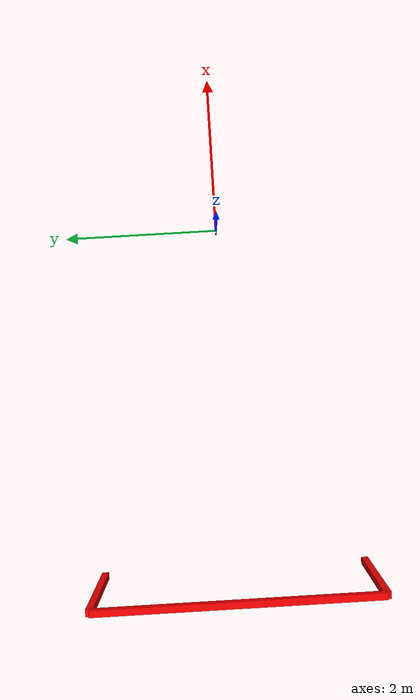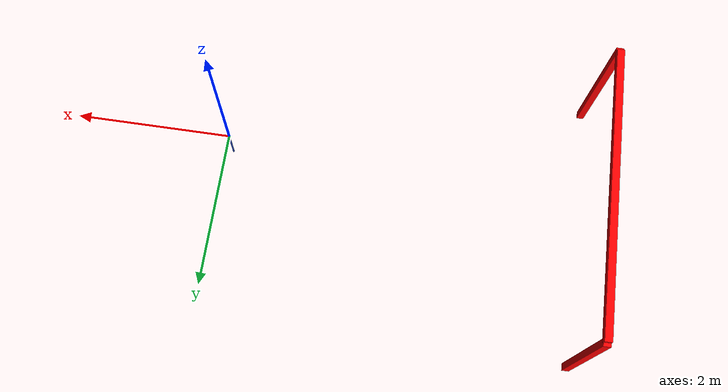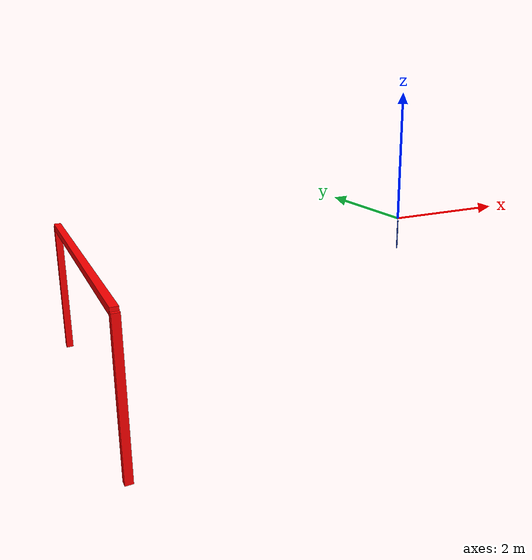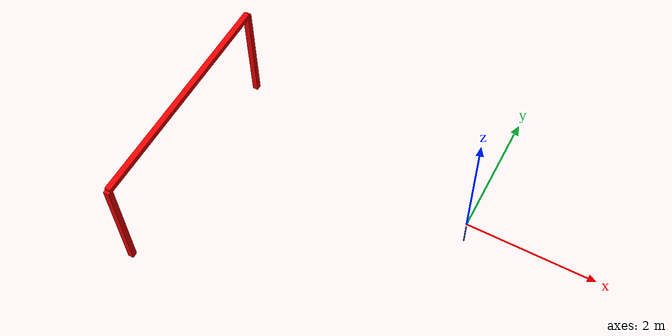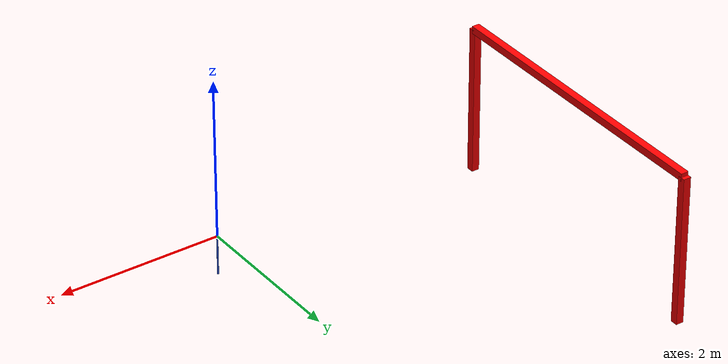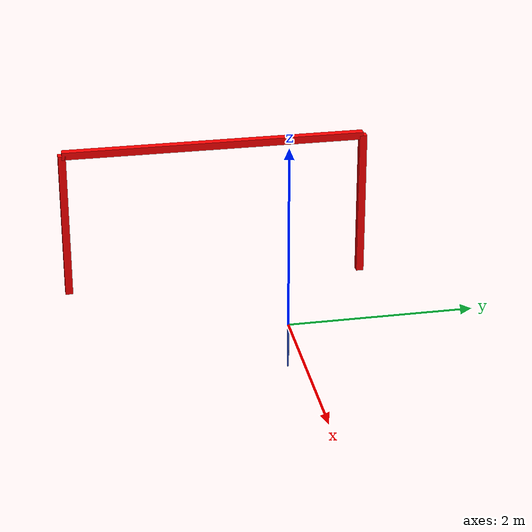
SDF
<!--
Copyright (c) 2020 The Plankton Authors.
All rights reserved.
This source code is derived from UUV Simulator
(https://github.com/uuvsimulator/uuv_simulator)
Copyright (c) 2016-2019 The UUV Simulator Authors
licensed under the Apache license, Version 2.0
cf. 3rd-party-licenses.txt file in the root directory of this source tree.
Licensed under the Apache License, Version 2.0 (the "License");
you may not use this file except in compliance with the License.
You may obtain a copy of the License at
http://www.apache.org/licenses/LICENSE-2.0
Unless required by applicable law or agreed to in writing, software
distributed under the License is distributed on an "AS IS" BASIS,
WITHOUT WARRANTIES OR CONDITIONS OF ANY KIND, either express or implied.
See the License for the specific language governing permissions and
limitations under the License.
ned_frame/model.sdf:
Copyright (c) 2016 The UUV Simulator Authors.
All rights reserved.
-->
<sdf version="1.4">
 <world name="oceans_waves">
  <physics name="default_physics" default="true" type="ode">
   <max_step_size>0.002</max_step_size>
   <real_time_factor>1</real_time_factor>
   <real_time_update_rate>500</real_time_update_rate>
  </physics>
  <scene>
   <ambient>0.01 0.01 0.01 1.0</ambient>
   <sky><clouds><speed>12</speed></clouds></sky>
   <shadows>1</shadows>
  </scene>
  <spherical_coordinates>
   <latitude_deg>56.71897669633431</latitude_deg>
   <longitude_deg>3.515625</longitude_deg>
  </spherical_coordinates>
  <light type="directional" name="sun1">
   <pose>50 0 150 0 0 0</pose>
   <diffuse>1 1 1 1</diffuse>
   <specular>.1 .1 .1 1</specular>
   <direction>0.3 0.3 -1</direction>
   <cast_shadows>false</cast_shadows>
  </light>
  <light type="directional" name="sun_diffuse">
   <pose>-50 0 -150 0 0 0</pose>
   <diffuse>0.6 0.6 0.6 1</diffuse>
   <specular>0 0 0 1</specular>
   <direction>-0.3 -0.3 -1</direction>
   <cast_shadows>false</cast_shadows>
  </light>
  <include><uri>model://ned_frame</uri></include>
  <plugin name="gazebo_ros" filename="libgazebo_ros_state.so"><ros><namespace>/gazebo</namespace></ros></plugin>
  <plugin name="underwater_current_plugin" filename="libuuv_underwater_current_ros_plugin.so">
   <namespace>hydrodynamics</namespace>
   <constant_current>
    <topic>current_velocity</topic>
    <velocity><mean>0</mean><min>0</min><max>5</max><mu>0.0</mu><noiseAmp>0.0</noiseAmp></velocity>
    <horizontal_angle>
     <mean>0</mean>
     <min>-3.141592653589793238</min>
     <max>3.141592653589793238</max>
     <mu>0.0</mu>
     <noiseAmp>0.0</noiseAmp>
    </horizontal_angle>
    <vertical_angle>
     <mean>0</mean>
     <min>-3.141592653589793238</min>
     <max>3.141592653589793238</max>
     <mu>0.0</mu>
     <noiseAmp>0.0</noiseAmp>
    </vertical_angle>
   </constant_current>
  </plugin>
  <plugin name="sc_interface" filename="libuuv_sc_ros_interface_plugin.so"/>
  <model name="gate_left">
   <static>true</static>
   <pose>-5 -2 -1 0 0 0</pose>
   <link name="link">
    <visual name="visual">
     <geometry><box><size>0.1 0.1 2</size></box></geometry>
     <material>
      <ambient>1 0 0 1</ambient>
      <diffuse>1 0 0 1</diffuse>
      <specular>0.2 0.2 0.2 1</specular>
      <emissive>0.4 0 0 1</emissive>
     </material>
    </visual>
    <collision name="collision"><geometry><box><size>0.1 0.1 2</size></box></geometry></collision>
   </link>
  </model>
  <model name="gate_right">
   <static>true</static>
   <pose>-5 2 -1 0 0 0</pose>
   <link name="link">
    <visual name="visual">
     <geometry><box><size>0.1 0.1 2</size></box></geometry>
     <material>
      <ambient>1 0 0 1</ambient>
      <diffuse>1 0 0 1</diffuse>
      <specular>0.2 0.2 0.2 1</specular>
      <emissive>0.4 0 0 1</emissive>
     </material>
    </visual>
    <collision name="collision"><geometry><box><size>0.1 0.1 2</size></box></geometry></collision>
   </link>
  </model>
  <model name="gate_top">
   <static>true</static>
   <pose>-5 0 0 0 0 0</pose>
   <link name="link">
    <visual name="visual">
     <geometry><box><size>0.1 4 0.1</size></box></geometry>
     <material>
      <ambient>1 0 0 1</ambient>
      <diffuse>1 0 0 1</diffuse>
      <specular>0.2 0.2 0.2 1</specular>
      <emissive>0.4 0 0 1</emissive>
     </material>
    </visual>
    <collision name="collision"><geometry><box><size>0.1 2 0.1</size></box></geometry></collision>
   </link>
  </model>
 </world>
</sdf>

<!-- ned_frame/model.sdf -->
<sdf version='1.5'>
    <model name="world_ned">

      <pose>0 0 0 0 0 0</pose>
      <static>true</static>

      <link name="world_ned">
        <gravity>0</gravity>
        <pose>0 0 0 3.14159265359 0 1.5707963267948966</pose>

        <visual name="N_visual">
          <pose>0.25 0 0 1.5707963267948966 0 1.5707963267948966</pose>
          <geometry>
            <cylinder>
              <radius>0.01</radius>
              <length>0.5</length>
            </cylinder>
          </geometry>
          <material>
            <script>
              <uri>file://media/materials/scripts/gazebo.material</uri>
              <name>Gazebo/Red</name>
            </script>
          </material>
        </visual>

        <visual name="E_visual">
          <pose>0 0.25 0 1.5707963267948966 0 0</pose>
          <geometry>
            <cylinder>
              <radius>0.01</radius>
              <length>0.5</length>
            </cylinder>
          </geometry>
          <material>
            <script>
              <uri>file://media/materials/scripts/gazebo.material</uri>
              <name>Gazebo/Green</name>
            </script>
          </material>
        </visual>

        <visual name="D_visual">
          <pose>0 0 0.25 0 0 0</pose>
          <geometry>
            <cylinder>
              <radius>0.01</radius>
              <length>0.5</length>
            </cylinder>
          </geometry>
          <material>
            <script>
              <uri>file://media/materials/scripts/gazebo.material</uri>
              <name>Gazebo/Blue</name>
            </script>
          </material>
        </visual>
      </link>
    </model>
</sdf>
